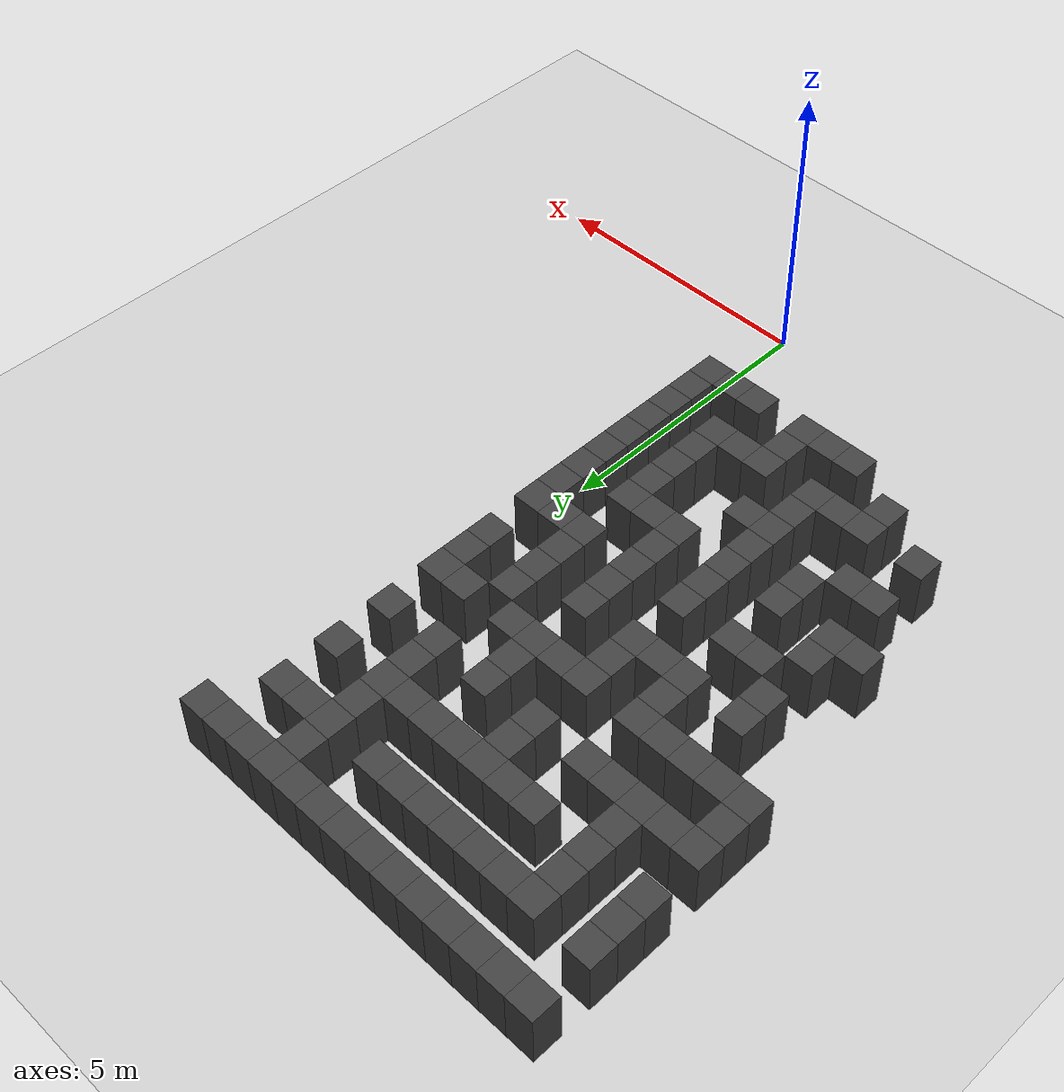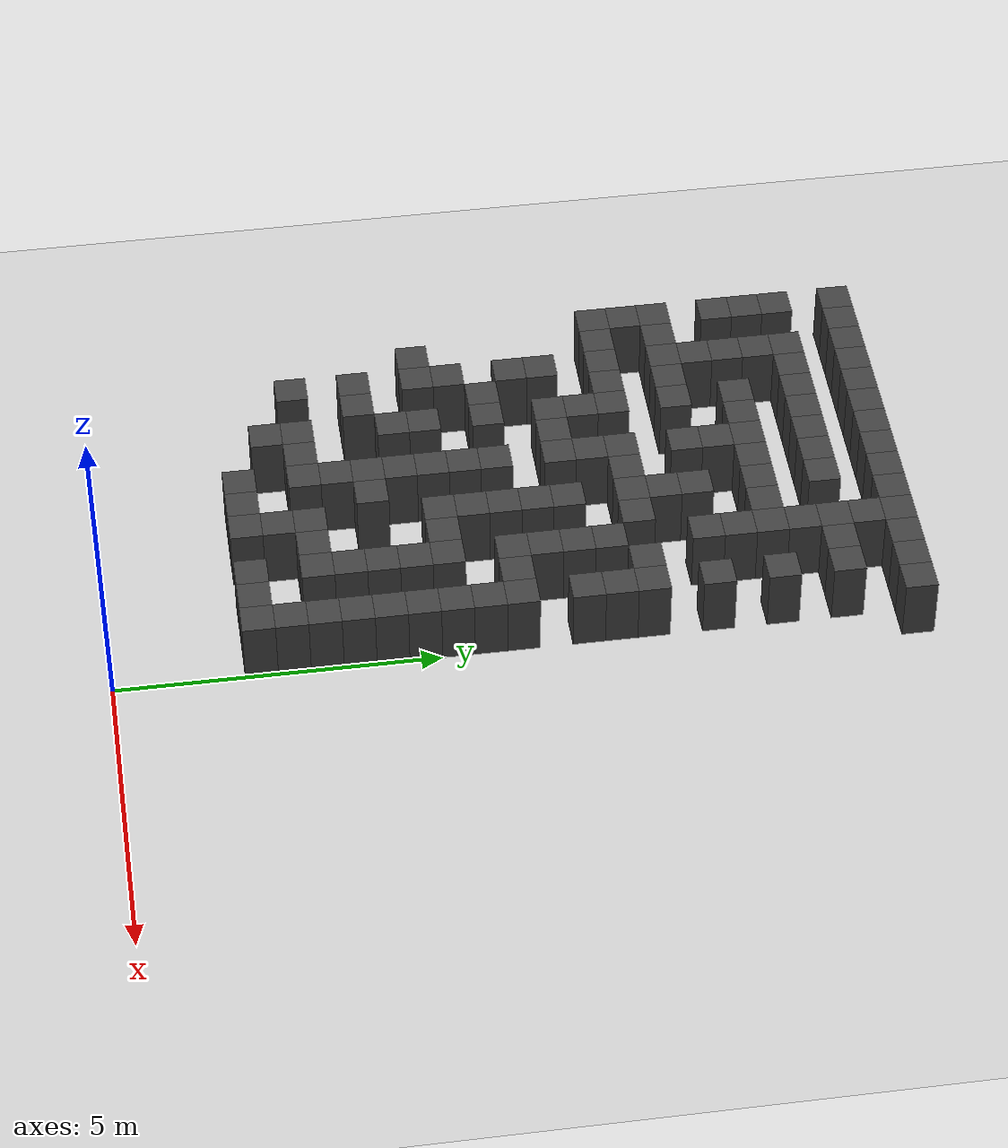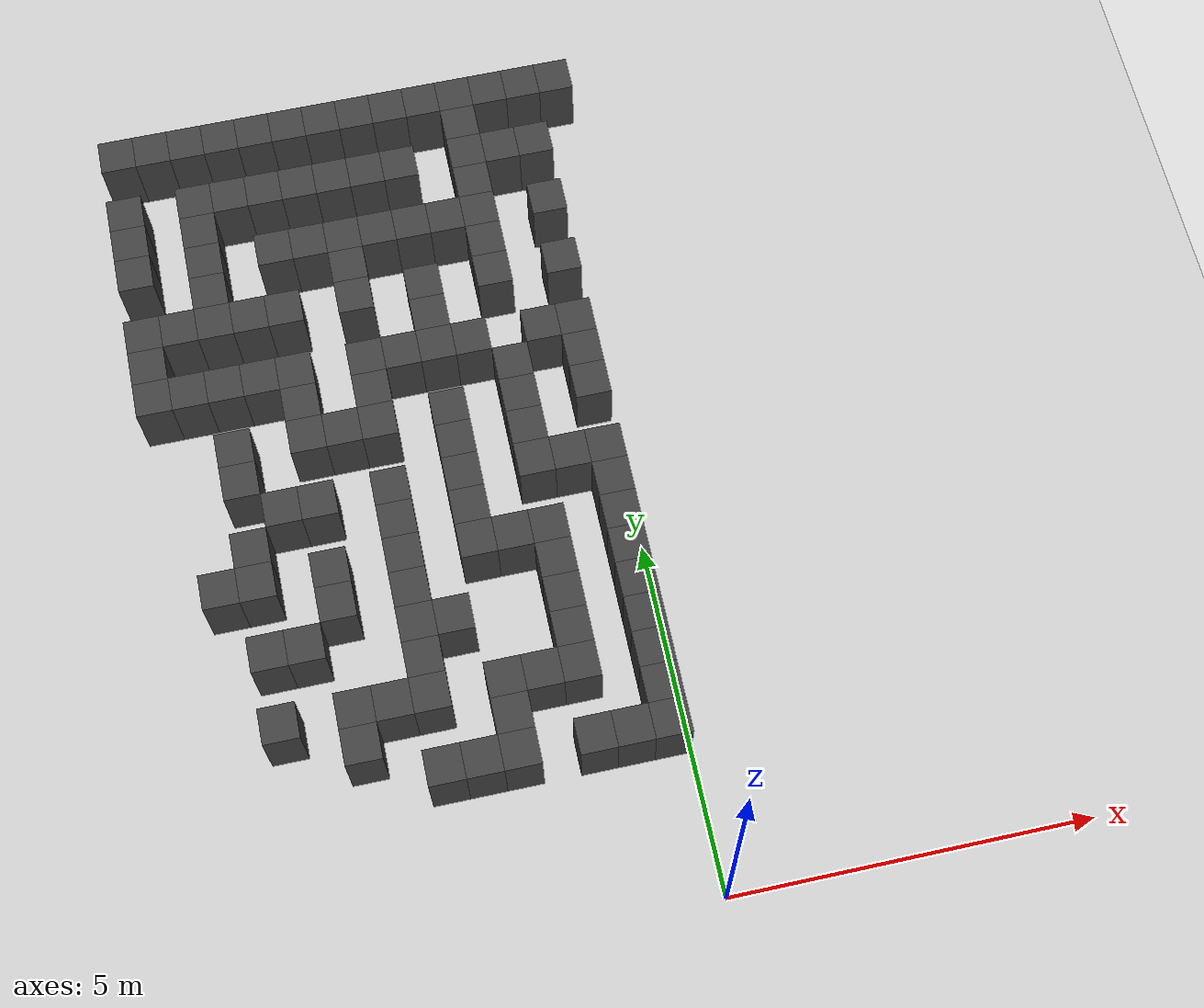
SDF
<sdf version="1.7">
 <world name="map_17508">
  <model name="ground_plane">
   <static>true</static>
   <link name="link">
    <collision name="collision">
     <geometry><plane><normal>0 0 1</normal><size>200 200</size></plane></geometry>
    </collision>
    <visual name="visual">
     <geometry><plane><normal>0 0 1</normal><size>200 200</size></plane></geometry>
     <material><ambient>0.8 0.8 0.8 1</ambient><diffuse>0.8 0.8 0.8 1</diffuse></material>
    </visual>
   </link>
  </model>
  <model name="maze_environment">
   <static>true</static>
   <link name="wall_12">
    <pose>-6.250 12.250 0.500 0 0 0</pose>
    <collision name="col"><geometry><box><size>0.5 0.5 1.0</size></box></geometry></collision>
    <visual name="vis">
     <geometry><box><size>0.5 0.5 1.0</size></box></geometry>
     <material><ambient>0.15 0.15 0.15 1</ambient><diffuse>0.25 0.25 0.25 1</diffuse></material>
    </visual>
   </link>
   <link name="wall_13">
    <pose>-5.750 12.250 0.500 0 0 0</pose>
    <collision name="col"><geometry><box><size>0.5 0.5 1.0</size></box></geometry></collision>
    <visual name="vis">
     <geometry><box><size>0.5 0.5 1.0</size></box></geometry>
     <material><ambient>0.15 0.15 0.15 1</ambient><diffuse>0.25 0.25 0.25 1</diffuse></material>
    </visual>
   </link>
   <link name="wall_14">
    <pose>-5.250 12.250 0.500 0 0 0</pose>
    <collision name="col"><geometry><box><size>0.5 0.5 1.0</size></box></geometry></collision>
    <visual name="vis">
     <geometry><box><size>0.5 0.5 1.0</size></box></geometry>
     <material><ambient>0.15 0.15 0.15 1</ambient><diffuse>0.25 0.25 0.25 1</diffuse></material>
    </visual>
   </link>
   <link name="wall_15">
    <pose>-4.750 12.250 0.500 0 0 0</pose>
    <collision name="col"><geometry><box><size>0.5 0.5 1.0</size></box></geometry></collision>
    <visual name="vis">
     <geometry><box><size>0.5 0.5 1.0</size></box></geometry>
     <material><ambient>0.15 0.15 0.15 1</ambient><diffuse>0.25 0.25 0.25 1</diffuse></material>
    </visual>
   </link>
   <link name="wall_16">
    <pose>-4.250 12.250 0.500 0 0 0</pose>
    <collision name="col"><geometry><box><size>0.5 0.5 1.0</size></box></geometry></collision>
    <visual name="vis">
     <geometry><box><size>0.5 0.5 1.0</size></box></geometry>
     <material><ambient>0.15 0.15 0.15 1</ambient><diffuse>0.25 0.25 0.25 1</diffuse></material>
    </visual>
   </link>
   <link name="wall_17">
    <pose>-3.750 12.250 0.500 0 0 0</pose>
    <collision name="col"><geometry><box><size>0.5 0.5 1.0</size></box></geometry></collision>
    <visual name="vis">
     <geometry><box><size>0.5 0.5 1.0</size></box></geometry>
     <material><ambient>0.15 0.15 0.15 1</ambient><diffuse>0.25 0.25 0.25 1</diffuse></material>
    </visual>
   </link>
   <link name="wall_18">
    <pose>-3.250 12.250 0.500 0 0 0</pose>
    <collision name="col"><geometry><box><size>0.5 0.5 1.0</size></box></geometry></collision>
    <visual name="vis">
     <geometry><box><size>0.5 0.5 1.0</size></box></geometry>
     <material><ambient>0.15 0.15 0.15 1</ambient><diffuse>0.25 0.25 0.25 1</diffuse></material>
    </visual>
   </link>
   <link name="wall_19">
    <pose>-2.750 12.250 0.500 0 0 0</pose>
    <collision name="col"><geometry><box><size>0.5 0.5 1.0</size></box></geometry></collision>
    <visual name="vis">
     <geometry><box><size>0.5 0.5 1.0</size></box></geometry>
     <material><ambient>0.15 0.15 0.15 1</ambient><diffuse>0.25 0.25 0.25 1</diffuse></material>
    </visual>
   </link>
   <link name="wall_20">
    <pose>-2.250 12.250 0.500 0 0 0</pose>
    <collision name="col"><geometry><box><size>0.5 0.5 1.0</size></box></geometry></collision>
    <visual name="vis">
     <geometry><box><size>0.5 0.5 1.0</size></box></geometry>
     <material><ambient>0.15 0.15 0.15 1</ambient><diffuse>0.25 0.25 0.25 1</diffuse></material>
    </visual>
   </link>
   <link name="wall_21">
    <pose>-1.750 12.250 0.500 0 0 0</pose>
    <collision name="col"><geometry><box><size>0.5 0.5 1.0</size></box></geometry></collision>
    <visual name="vis">
     <geometry><box><size>0.5 0.5 1.0</size></box></geometry>
     <material><ambient>0.15 0.15 0.15 1</ambient><diffuse>0.25 0.25 0.25 1</diffuse></material>
    </visual>
   </link>
   <link name="wall_22">
    <pose>-1.250 12.250 0.500 0 0 0</pose>
    <collision name="col"><geometry><box><size>0.5 0.5 1.0</size></box></geometry></collision>
    <visual name="vis">
     <geometry><box><size>0.5 0.5 1.0</size></box></geometry>
     <material><ambient>0.15 0.15 0.15 1</ambient><diffuse>0.25 0.25 0.25 1</diffuse></material>
    </visual>
   </link>
   <link name="wall_23">
    <pose>-0.750 12.250 0.500 0 0 0</pose>
    <collision name="col"><geometry><box><size>0.5 0.5 1.0</size></box></geometry></collision>
    <visual name="vis">
     <geometry><box><size>0.5 0.5 1.0</size></box></geometry>
     <material><ambient>0.15 0.15 0.15 1</ambient><diffuse>0.25 0.25 0.25 1</diffuse></material>
    </visual>
   </link>
   <link name="wall_24">
    <pose>-0.250 12.250 0.500 0 0 0</pose>
    <collision name="col"><geometry><box><size>0.5 0.5 1.0</size></box></geometry></collision>
    <visual name="vis">
     <geometry><box><size>0.5 0.5 1.0</size></box></geometry>
     <material><ambient>0.15 0.15 0.15 1</ambient><diffuse>0.25 0.25 0.25 1</diffuse></material>
    </visual>
   </link>
   <link name="wall_25">
    <pose>0.250 12.250 0.500 0 0 0</pose>
    <collision name="col"><geometry><box><size>0.5 0.5 1.0</size></box></geometry></collision>
    <visual name="vis">
     <geometry><box><size>0.5 0.5 1.0</size></box></geometry>
     <material><ambient>0.15 0.15 0.15 1</ambient><diffuse>0.25 0.25 0.25 1</diffuse></material>
    </visual>
   </link>
   <link name="wall_53">
    <pose>-1.250 11.750 0.500 0 0 0</pose>
    <collision name="col"><geometry><box><size>0.5 0.5 1.0</size></box></geometry></collision>
    <visual name="vis">
     <geometry><box><size>0.5 0.5 1.0</size></box></geometry>
     <material><ambient>0.15 0.15 0.15 1</ambient><diffuse>0.25 0.25 0.25 1</diffuse></material>
    </visual>
   </link>
   <link name="wall_65">
    <pose>-6.250 11.250 0.500 0 0 0</pose>
    <collision name="col"><geometry><box><size>0.5 0.5 1.0</size></box></geometry></collision>
    <visual name="vis">
     <geometry><box><size>0.5 0.5 1.0</size></box></geometry>
     <material><ambient>0.15 0.15 0.15 1</ambient><diffuse>0.25 0.25 0.25 1</diffuse></material>
    </visual>
   </link>
   <link name="wall_66">
    <pose>-5.250 11.250 0.500 0 0 0</pose>
    <collision name="col"><geometry><box><size>0.5 0.5 1.0</size></box></geometry></collision>
    <visual name="vis">
     <geometry><box><size>0.5 0.5 1.0</size></box></geometry>
     <material><ambient>0.15 0.15 0.15 1</ambient><diffuse>0.25 0.25 0.25 1</diffuse></material>
    </visual>
   </link>
   <link name="wall_67">
    <pose>-4.750 11.250 0.500 0 0 0</pose>
    <collision name="col"><geometry><box><size>0.5 0.5 1.0</size></box></geometry></collision>
    <visual name="vis">
     <geometry><box><size>0.5 0.5 1.0</size></box></geometry>
     <material><ambient>0.15 0.15 0.15 1</ambient><diffuse>0.25 0.25 0.25 1</diffuse></material>
    </visual>
   </link>
   <link name="wall_68">
    <pose>-4.250 11.250 0.500 0 0 0</pose>
    <collision name="col"><geometry><box><size>0.5 0.5 1.0</size></box></geometry></collision>
    <visual name="vis">
     <geometry><box><size>0.5 0.5 1.0</size></box></geometry>
     <material><ambient>0.15 0.15 0.15 1</ambient><diffuse>0.25 0.25 0.25 1</diffuse></material>
    </visual>
   </link>
   <link name="wall_69">
    <pose>-3.750 11.250 0.500 0 0 0</pose>
    <collision name="col"><geometry><box><size>0.5 0.5 1.0</size></box></geometry></collision>
    <visual name="vis">
     <geometry><box><size>0.5 0.5 1.0</size></box></geometry>
     <material><ambient>0.15 0.15 0.15 1</ambient><diffuse>0.25 0.25 0.25 1</diffuse></material>
    </visual>
   </link>
   <link name="wall_70">
    <pose>-3.250 11.250 0.500 0 0 0</pose>
    <collision name="col"><geometry><box><size>0.5 0.5 1.0</size></box></geometry></collision>
    <visual name="vis">
     <geometry><box><size>0.5 0.5 1.0</size></box></geometry>
     <material><ambient>0.15 0.15 0.15 1</ambient><diffuse>0.25 0.25 0.25 1</diffuse></material>
    </visual>
   </link>
   <link name="wall_71">
    <pose>-2.750 11.250 0.500 0 0 0</pose>
    <collision name="col"><geometry><box><size>0.5 0.5 1.0</size></box></geometry></collision>
    <visual name="vis">
     <geometry><box><size>0.5 0.5 1.0</size></box></geometry>
     <material><ambient>0.15 0.15 0.15 1</ambient><diffuse>0.25 0.25 0.25 1</diffuse></material>
    </visual>
   </link>
   <link name="wall_72">
    <pose>-2.250 11.250 0.500 0 0 0</pose>
    <collision name="col"><geometry><box><size>0.5 0.5 1.0</size></box></geometry></collision>
    <visual name="vis">
     <geometry><box><size>0.5 0.5 1.0</size></box></geometry>
     <material><ambient>0.15 0.15 0.15 1</ambient><diffuse>0.25 0.25 0.25 1</diffuse></material>
    </visual>
   </link>
   <link name="wall_73">
    <pose>-1.250 11.250 0.500 0 0 0</pose>
    <collision name="col"><geometry><box><size>0.5 0.5 1.0</size></box></geometry></collision>
    <visual name="vis">
     <geometry><box><size>0.5 0.5 1.0</size></box></geometry>
     <material><ambient>0.15 0.15 0.15 1</ambient><diffuse>0.25 0.25 0.25 1</diffuse></material>
    </visual>
   </link>
   <link name="wall_74">
    <pose>-0.750 11.250 0.500 0 0 0</pose>
    <collision name="col"><geometry><box><size>0.5 0.5 1.0</size></box></geometry></collision>
    <visual name="vis">
     <geometry><box><size>0.5 0.5 1.0</size></box></geometry>
     <material><ambient>0.15 0.15 0.15 1</ambient><diffuse>0.25 0.25 0.25 1</diffuse></material>
    </visual>
   </link>
   <link name="wall_75">
    <pose>-0.250 11.250 0.500 0 0 0</pose>
    <collision name="col"><geometry><box><size>0.5 0.5 1.0</size></box></geometry></collision>
    <visual name="vis">
     <geometry><box><size>0.5 0.5 1.0</size></box></geometry>
     <material><ambient>0.15 0.15 0.15 1</ambient><diffuse>0.25 0.25 0.25 1</diffuse></material>
    </visual>
   </link>
   <link name="wall_97">
    <pose>-6.250 10.750 0.500 0 0 0</pose>
    <collision name="col"><geometry><box><size>0.5 0.5 1.0</size></box></geometry></collision>
    <visual name="vis">
     <geometry><box><size>0.5 0.5 1.0</size></box></geometry>
     <material><ambient>0.15 0.15 0.15 1</ambient><diffuse>0.25 0.25 0.25 1</diffuse></material>
    </visual>
   </link>
   <link name="wall_98">
    <pose>-5.250 10.750 0.500 0 0 0</pose>
    <collision name="col"><geometry><box><size>0.5 0.5 1.0</size></box></geometry></collision>
    <visual name="vis">
     <geometry><box><size>0.5 0.5 1.0</size></box></geometry>
     <material><ambient>0.15 0.15 0.15 1</ambient><diffuse>0.25 0.25 0.25 1</diffuse></material>
    </visual>
   </link>
   <link name="wall_99">
    <pose>-1.250 10.750 0.500 0 0 0</pose>
    <collision name="col"><geometry><box><size>0.5 0.5 1.0</size></box></geometry></collision>
    <visual name="vis">
     <geometry><box><size>0.5 0.5 1.0</size></box></geometry>
     <material><ambient>0.15 0.15 0.15 1</ambient><diffuse>0.25 0.25 0.25 1</diffuse></material>
    </visual>
   </link>
   <link name="wall_115">
    <pose>-6.250 10.250 0.500 0 0 0</pose>
    <collision name="col"><geometry><box><size>0.5 0.5 1.0</size></box></geometry></collision>
    <visual name="vis">
     <geometry><box><size>0.5 0.5 1.0</size></box></geometry>
     <material><ambient>0.15 0.15 0.15 1</ambient><diffuse>0.25 0.25 0.25 1</diffuse></material>
    </visual>
   </link>
   <link name="wall_116">
    <pose>-5.250 10.250 0.500 0 0 0</pose>
    <collision name="col"><geometry><box><size>0.5 0.5 1.0</size></box></geometry></collision>
    <visual name="vis">
     <geometry><box><size>0.5 0.5 1.0</size></box></geometry>
     <material><ambient>0.15 0.15 0.15 1</ambient><diffuse>0.25 0.25 0.25 1</diffuse></material>
    </visual>
   </link>
   <link name="wall_117">
    <pose>-4.250 10.250 0.500 0 0 0</pose>
    <collision name="col"><geometry><box><size>0.5 0.5 1.0</size></box></geometry></collision>
    <visual name="vis">
     <geometry><box><size>0.5 0.5 1.0</size></box></geometry>
     <material><ambient>0.15 0.15 0.15 1</ambient><diffuse>0.25 0.25 0.25 1</diffuse></material>
    </visual>
   </link>
   <link name="wall_118">
    <pose>-3.750 10.250 0.500 0 0 0</pose>
    <collision name="col"><geometry><box><size>0.5 0.5 1.0</size></box></geometry></collision>
    <visual name="vis">
     <geometry><box><size>0.5 0.5 1.0</size></box></geometry>
     <material><ambient>0.15 0.15 0.15 1</ambient><diffuse>0.25 0.25 0.25 1</diffuse></material>
    </visual>
   </link>
   <link name="wall_119">
    <pose>-3.250 10.250 0.500 0 0 0</pose>
    <collision name="col"><geometry><box><size>0.5 0.5 1.0</size></box></geometry></collision>
    <visual name="vis">
     <geometry><box><size>0.5 0.5 1.0</size></box></geometry>
     <material><ambient>0.15 0.15 0.15 1</ambient><diffuse>0.25 0.25 0.25 1</diffuse></material>
    </visual>
   </link>
   <link name="wall_120">
    <pose>-2.750 10.250 0.500 0 0 0</pose>
    <collision name="col"><geometry><box><size>0.5 0.5 1.0</size></box></geometry></collision>
    <visual name="vis">
     <geometry><box><size>0.5 0.5 1.0</size></box></geometry>
     <material><ambient>0.15 0.15 0.15 1</ambient><diffuse>0.25 0.25 0.25 1</diffuse></material>
    </visual>
   </link>
   <link name="wall_121">
    <pose>-2.250 10.250 0.500 0 0 0</pose>
    <collision name="col"><geometry><box><size>0.5 0.5 1.0</size></box></geometry></collision>
    <visual name="vis">
     <geometry><box><size>0.5 0.5 1.0</size></box></geometry>
     <material><ambient>0.15 0.15 0.15 1</ambient><diffuse>0.25 0.25 0.25 1</diffuse></material>
    </visual>
   </link>
   <link name="wall_122">
    <pose>-1.750 10.250 0.500 0 0 0</pose>
    <collision name="col"><geometry><box><size>0.5 0.5 1.0</size></box></geometry></collision>
    <visual name="vis">
     <geometry><box><size>0.5 0.5 1.0</size></box></geometry>
     <material><ambient>0.15 0.15 0.15 1</ambient><diffuse>0.25 0.25 0.25 1</diffuse></material>
    </visual>
   </link>
   <link name="wall_123">
    <pose>-1.250 10.250 0.500 0 0 0</pose>
    <collision name="col"><geometry><box><size>0.5 0.5 1.0</size></box></geometry></collision>
    <visual name="vis">
     <geometry><box><size>0.5 0.5 1.0</size></box></geometry>
     <material><ambient>0.15 0.15 0.15 1</ambient><diffuse>0.25 0.25 0.25 1</diffuse></material>
    </visual>
   </link>
   <link name="wall_124">
    <pose>-0.250 10.250 0.500 0 0 0</pose>
    <collision name="col"><geometry><box><size>0.5 0.5 1.0</size></box></geometry></collision>
    <visual name="vis">
     <geometry><box><size>0.5 0.5 1.0</size></box></geometry>
     <material><ambient>0.15 0.15 0.15 1</ambient><diffuse>0.25 0.25 0.25 1</diffuse></material>
    </visual>
   </link>
   <link name="wall_149">
    <pose>-5.250 9.750 0.500 0 0 0</pose>
    <collision name="col"><geometry><box><size>0.5 0.5 1.0</size></box></geometry></collision>
    <visual name="vis">
     <geometry><box><size>0.5 0.5 1.0</size></box></geometry>
     <material><ambient>0.15 0.15 0.15 1</ambient><diffuse>0.25 0.25 0.25 1</diffuse></material>
    </visual>
   </link>
   <link name="wall_150">
    <pose>-3.250 9.750 0.500 0 0 0</pose>
    <collision name="col"><geometry><box><size>0.5 0.5 1.0</size></box></geometry></collision>
    <visual name="vis">
     <geometry><box><size>0.5 0.5 1.0</size></box></geometry>
     <material><ambient>0.15 0.15 0.15 1</ambient><diffuse>0.25 0.25 0.25 1</diffuse></material>
    </visual>
   </link>
   <link name="wall_151">
    <pose>-1.250 9.750 0.500 0 0 0</pose>
    <collision name="col"><geometry><box><size>0.5 0.5 1.0</size></box></geometry></collision>
    <visual name="vis">
     <geometry><box><size>0.5 0.5 1.0</size></box></geometry>
     <material><ambient>0.15 0.15 0.15 1</ambient><diffuse>0.25 0.25 0.25 1</diffuse></material>
    </visual>
   </link>
   <link name="wall_168">
    <pose>-6.250 9.250 0.500 0 0 0</pose>
    <collision name="col"><geometry><box><size>0.5 0.5 1.0</size></box></geometry></collision>
    <visual name="vis">
     <geometry><box><size>0.5 0.5 1.0</size></box></geometry>
     <material><ambient>0.15 0.15 0.15 1</ambient><diffuse>0.25 0.25 0.25 1</diffuse></material>
    </visual>
   </link>
   <link name="wall_169">
    <pose>-5.750 9.250 0.500 0 0 0</pose>
    <collision name="col"><geometry><box><size>0.5 0.5 1.0</size></box></geometry></collision>
    <visual name="vis">
     <geometry><box><size>0.5 0.5 1.0</size></box></geometry>
     <material><ambient>0.15 0.15 0.15 1</ambient><diffuse>0.25 0.25 0.25 1</diffuse></material>
    </visual>
   </link>
   <link name="wall_170">
    <pose>-5.250 9.250 0.500 0 0 0</pose>
    <collision name="col"><geometry><box><size>0.5 0.5 1.0</size></box></geometry></collision>
    <visual name="vis">
     <geometry><box><size>0.5 0.5 1.0</size></box></geometry>
     <material><ambient>0.15 0.15 0.15 1</ambient><diffuse>0.25 0.25 0.25 1</diffuse></material>
    </visual>
   </link>
   <link name="wall_171">
    <pose>-4.750 9.250 0.500 0 0 0</pose>
    <collision name="col"><geometry><box><size>0.5 0.5 1.0</size></box></geometry></collision>
    <visual name="vis">
     <geometry><box><size>0.5 0.5 1.0</size></box></geometry>
     <material><ambient>0.15 0.15 0.15 1</ambient><diffuse>0.25 0.25 0.25 1</diffuse></material>
    </visual>
   </link>
   <link name="wall_172">
    <pose>-4.250 9.250 0.500 0 0 0</pose>
    <collision name="col"><geometry><box><size>0.5 0.5 1.0</size></box></geometry></collision>
    <visual name="vis">
     <geometry><box><size>0.5 0.5 1.0</size></box></geometry>
     <material><ambient>0.15 0.15 0.15 1</ambient><diffuse>0.25 0.25 0.25 1</diffuse></material>
    </visual>
   </link>
   <link name="wall_173">
    <pose>-3.250 9.250 0.500 0 0 0</pose>
    <collision name="col"><geometry><box><size>0.5 0.5 1.0</size></box></geometry></collision>
    <visual name="vis">
     <geometry><box><size>0.5 0.5 1.0</size></box></geometry>
     <material><ambient>0.15 0.15 0.15 1</ambient><diffuse>0.25 0.25 0.25 1</diffuse></material>
    </visual>
   </link>
   <link name="wall_174">
    <pose>-2.250 9.250 0.500 0 0 0</pose>
    <collision name="col"><geometry><box><size>0.5 0.5 1.0</size></box></geometry></collision>
    <visual name="vis">
     <geometry><box><size>0.5 0.5 1.0</size></box></geometry>
     <material><ambient>0.15 0.15 0.15 1</ambient><diffuse>0.25 0.25 0.25 1</diffuse></material>
    </visual>
   </link>
   <link name="wall_175">
    <pose>-1.250 9.250 0.500 0 0 0</pose>
    <collision name="col"><geometry><box><size>0.5 0.5 1.0</size></box></geometry></collision>
    <visual name="vis">
     <geometry><box><size>0.5 0.5 1.0</size></box></geometry>
     <material><ambient>0.15 0.15 0.15 1</ambient><diffuse>0.25 0.25 0.25 1</diffuse></material>
    </visual>
   </link>
   <link name="wall_176">
    <pose>-0.250 9.250 0.500 0 0 0</pose>
    <collision name="col"><geometry><box><size>0.5 0.5 1.0</size></box></geometry></collision>
    <visual name="vis">
     <geometry><box><size>0.5 0.5 1.0</size></box></geometry>
     <material><ambient>0.15 0.15 0.15 1</ambient><diffuse>0.25 0.25 0.25 1</diffuse></material>
    </visual>
   </link>
   <link name="wall_194">
    <pose>-6.250 8.750 0.500 0 0 0</pose>
    <collision name="col"><geometry><box><size>0.5 0.5 1.0</size></box></geometry></collision>
    <visual name="vis">
     <geometry><box><size>0.5 0.5 1.0</size></box></geometry>
     <material><ambient>0.15 0.15 0.15 1</ambient><diffuse>0.25 0.25 0.25 1</diffuse></material>
    </visual>
   </link>
   <link name="wall_195">
    <pose>-2.250 8.750 0.500 0 0 0</pose>
    <collision name="col"><geometry><box><size>0.5 0.5 1.0</size></box></geometry></collision>
    <visual name="vis">
     <geometry><box><size>0.5 0.5 1.0</size></box></geometry>
     <material><ambient>0.15 0.15 0.15 1</ambient><diffuse>0.25 0.25 0.25 1</diffuse></material>
    </visual>
   </link>
   <link name="wall_214">
    <pose>-6.250 8.250 0.500 0 0 0</pose>
    <collision name="col"><geometry><box><size>0.5 0.5 1.0</size></box></geometry></collision>
    <visual name="vis">
     <geometry><box><size>0.5 0.5 1.0</size></box></geometry>
     <material><ambient>0.15 0.15 0.15 1</ambient><diffuse>0.25 0.25 0.25 1</diffuse></material>
    </visual>
   </link>
   <link name="wall_215">
    <pose>-5.750 8.250 0.500 0 0 0</pose>
    <collision name="col"><geometry><box><size>0.5 0.5 1.0</size></box></geometry></collision>
    <visual name="vis">
     <geometry><box><size>0.5 0.5 1.0</size></box></geometry>
     <material><ambient>0.15 0.15 0.15 1</ambient><diffuse>0.25 0.25 0.25 1</diffuse></material>
    </visual>
   </link>
   <link name="wall_216">
    <pose>-5.250 8.250 0.500 0 0 0</pose>
    <collision name="col"><geometry><box><size>0.5 0.5 1.0</size></box></geometry></collision>
    <visual name="vis">
     <geometry><box><size>0.5 0.5 1.0</size></box></geometry>
     <material><ambient>0.15 0.15 0.15 1</ambient><diffuse>0.25 0.25 0.25 1</diffuse></material>
    </visual>
   </link>
   <link name="wall_217">
    <pose>-4.750 8.250 0.500 0 0 0</pose>
    <collision name="col"><geometry><box><size>0.5 0.5 1.0</size></box></geometry></collision>
    <visual name="vis">
     <geometry><box><size>0.5 0.5 1.0</size></box></geometry>
     <material><ambient>0.15 0.15 0.15 1</ambient><diffuse>0.25 0.25 0.25 1</diffuse></material>
    </visual>
   </link>
   <link name="wall_218">
    <pose>-4.250 8.250 0.500 0 0 0</pose>
    <collision name="col"><geometry><box><size>0.5 0.5 1.0</size></box></geometry></collision>
    <visual name="vis">
     <geometry><box><size>0.5 0.5 1.0</size></box></geometry>
     <material><ambient>0.15 0.15 0.15 1</ambient><diffuse>0.25 0.25 0.25 1</diffuse></material>
    </visual>
   </link>
   <link name="wall_219">
    <pose>-3.250 8.250 0.500 0 0 0</pose>
    <collision name="col"><geometry><box><size>0.5 0.5 1.0</size></box></geometry></collision>
    <visual name="vis">
     <geometry><box><size>0.5 0.5 1.0</size></box></geometry>
     <material><ambient>0.15 0.15 0.15 1</ambient><diffuse>0.25 0.25 0.25 1</diffuse></material>
    </visual>
   </link>
   <link name="wall_220">
    <pose>-2.750 8.250 0.500 0 0 0</pose>
    <collision name="col"><geometry><box><size>0.5 0.5 1.0</size></box></geometry></collision>
    <visual name="vis">
     <geometry><box><size>0.5 0.5 1.0</size></box></geometry>
     <material><ambient>0.15 0.15 0.15 1</ambient><diffuse>0.25 0.25 0.25 1</diffuse></material>
    </visual>
   </link>
   <link name="wall_221">
    <pose>-2.250 8.250 0.500 0 0 0</pose>
    <collision name="col"><geometry><box><size>0.5 0.5 1.0</size></box></geometry></collision>
    <visual name="vis">
     <geometry><box><size>0.5 0.5 1.0</size></box></geometry>
     <material><ambient>0.15 0.15 0.15 1</ambient><diffuse>0.25 0.25 0.25 1</diffuse></material>
    </visual>
   </link>
   <link name="wall_222">
    <pose>-1.750 8.250 0.500 0 0 0</pose>
    <collision name="col"><geometry><box><size>0.5 0.5 1.0</size></box></geometry></collision>
    <visual name="vis">
     <geometry><box><size>0.5 0.5 1.0</size></box></geometry>
     <material><ambient>0.15 0.15 0.15 1</ambient><diffuse>0.25 0.25 0.25 1</diffuse></material>
    </visual>
   </link>
   <link name="wall_223">
    <pose>-0.750 8.250 0.500 0 0 0</pose>
    <collision name="col"><geometry><box><size>0.5 0.5 1.0</size></box></geometry></collision>
    <visual name="vis">
     <geometry><box><size>0.5 0.5 1.0</size></box></geometry>
     <material><ambient>0.15 0.15 0.15 1</ambient><diffuse>0.25 0.25 0.25 1</diffuse></material>
    </visual>
   </link>
   <link name="wall_224">
    <pose>-0.250 8.250 0.500 0 0 0</pose>
    <collision name="col"><geometry><box><size>0.5 0.5 1.0</size></box></geometry></collision>
    <visual name="vis">
     <geometry><box><size>0.5 0.5 1.0</size></box></geometry>
     <material><ambient>0.15 0.15 0.15 1</ambient><diffuse>0.25 0.25 0.25 1</diffuse></material>
    </visual>
   </link>
   <link name="wall_246">
    <pose>-4.250 7.750 0.500 0 0 0</pose>
    <collision name="col"><geometry><box><size>0.5 0.5 1.0</size></box></geometry></collision>
    <visual name="vis">
     <geometry><box><size>0.5 0.5 1.0</size></box></geometry>
     <material><ambient>0.15 0.15 0.15 1</ambient><diffuse>0.25 0.25 0.25 1</diffuse></material>
    </visual>
   </link>
   <link name="wall_247">
    <pose>-3.250 7.750 0.500 0 0 0</pose>
    <collision name="col"><geometry><box><size>0.5 0.5 1.0</size></box></geometry></collision>
    <visual name="vis">
     <geometry><box><size>0.5 0.5 1.0</size></box></geometry>
     <material><ambient>0.15 0.15 0.15 1</ambient><diffuse>0.25 0.25 0.25 1</diffuse></material>
    </visual>
   </link>
   <link name="wall_248">
    <pose>-1.250 7.750 0.500 0 0 0</pose>
    <collision name="col"><geometry><box><size>0.5 0.5 1.0</size></box></geometry></collision>
    <visual name="vis">
     <geometry><box><size>0.5 0.5 1.0</size></box></geometry>
     <material><ambient>0.15 0.15 0.15 1</ambient><diffuse>0.25 0.25 0.25 1</diffuse></material>
    </visual>
   </link>
   <link name="wall_249">
    <pose>-0.250 7.750 0.500 0 0 0</pose>
    <collision name="col"><geometry><box><size>0.5 0.5 1.0</size></box></geometry></collision>
    <visual name="vis">
     <geometry><box><size>0.5 0.5 1.0</size></box></geometry>
     <material><ambient>0.15 0.15 0.15 1</ambient><diffuse>0.25 0.25 0.25 1</diffuse></material>
    </visual>
   </link>
   <link name="wall_264">
    <pose>-5.250 7.250 0.500 0 0 0</pose>
    <collision name="col"><geometry><box><size>0.5 0.5 1.0</size></box></geometry></collision>
    <visual name="vis">
     <geometry><box><size>0.5 0.5 1.0</size></box></geometry>
     <material><ambient>0.15 0.15 0.15 1</ambient><diffuse>0.25 0.25 0.25 1</diffuse></material>
    </visual>
   </link>
   <link name="wall_265">
    <pose>-4.250 7.250 0.500 0 0 0</pose>
    <collision name="col"><geometry><box><size>0.5 0.5 1.0</size></box></geometry></collision>
    <visual name="vis">
     <geometry><box><size>0.5 0.5 1.0</size></box></geometry>
     <material><ambient>0.15 0.15 0.15 1</ambient><diffuse>0.25 0.25 0.25 1</diffuse></material>
    </visual>
   </link>
   <link name="wall_266">
    <pose>-3.750 7.250 0.500 0 0 0</pose>
    <collision name="col"><geometry><box><size>0.5 0.5 1.0</size></box></geometry></collision>
    <visual name="vis">
     <geometry><box><size>0.5 0.5 1.0</size></box></geometry>
     <material><ambient>0.15 0.15 0.15 1</ambient><diffuse>0.25 0.25 0.25 1</diffuse></material>
    </visual>
   </link>
   <link name="wall_267">
    <pose>-3.250 7.250 0.500 0 0 0</pose>
    <collision name="col"><geometry><box><size>0.5 0.5 1.0</size></box></geometry></collision>
    <visual name="vis">
     <geometry><box><size>0.5 0.5 1.0</size></box></geometry>
     <material><ambient>0.15 0.15 0.15 1</ambient><diffuse>0.25 0.25 0.25 1</diffuse></material>
    </visual>
   </link>
   <link name="wall_268">
    <pose>-2.250 7.250 0.500 0 0 0</pose>
    <collision name="col"><geometry><box><size>0.5 0.5 1.0</size></box></geometry></collision>
    <visual name="vis">
     <geometry><box><size>0.5 0.5 1.0</size></box></geometry>
     <material><ambient>0.15 0.15 0.15 1</ambient><diffuse>0.25 0.25 0.25 1</diffuse></material>
    </visual>
   </link>
   <link name="wall_269">
    <pose>-1.250 7.250 0.500 0 0 0</pose>
    <collision name="col"><geometry><box><size>0.5 0.5 1.0</size></box></geometry></collision>
    <visual name="vis">
     <geometry><box><size>0.5 0.5 1.0</size></box></geometry>
     <material><ambient>0.15 0.15 0.15 1</ambient><diffuse>0.25 0.25 0.25 1</diffuse></material>
    </visual>
   </link>
   <link name="wall_270">
    <pose>-0.250 7.250 0.500 0 0 0</pose>
    <collision name="col"><geometry><box><size>0.5 0.5 1.0</size></box></geometry></collision>
    <visual name="vis">
     <geometry><box><size>0.5 0.5 1.0</size></box></geometry>
     <material><ambient>0.15 0.15 0.15 1</ambient><diffuse>0.25 0.25 0.25 1</diffuse></material>
    </visual>
   </link>
   <link name="wall_293">
    <pose>-5.250 6.750 0.500 0 0 0</pose>
    <collision name="col"><geometry><box><size>0.5 0.5 1.0</size></box></geometry></collision>
    <visual name="vis">
     <geometry><box><size>0.5 0.5 1.0</size></box></geometry>
     <material><ambient>0.15 0.15 0.15 1</ambient><diffuse>0.25 0.25 0.25 1</diffuse></material>
    </visual>
   </link>
   <link name="wall_294">
    <pose>-2.250 6.750 0.500 0 0 0</pose>
    <collision name="col"><geometry><box><size>0.5 0.5 1.0</size></box></geometry></collision>
    <visual name="vis">
     <geometry><box><size>0.5 0.5 1.0</size></box></geometry>
     <material><ambient>0.15 0.15 0.15 1</ambient><diffuse>0.25 0.25 0.25 1</diffuse></material>
    </visual>
   </link>
   <link name="wall_295">
    <pose>-1.250 6.750 0.500 0 0 0</pose>
    <collision name="col"><geometry><box><size>0.5 0.5 1.0</size></box></geometry></collision>
    <visual name="vis">
     <geometry><box><size>0.5 0.5 1.0</size></box></geometry>
     <material><ambient>0.15 0.15 0.15 1</ambient><diffuse>0.25 0.25 0.25 1</diffuse></material>
    </visual>
   </link>
   <link name="wall_313">
    <pose>-4.750 6.250 0.500 0 0 0</pose>
    <collision name="col"><geometry><box><size>0.5 0.5 1.0</size></box></geometry></collision>
    <visual name="vis">
     <geometry><box><size>0.5 0.5 1.0</size></box></geometry>
     <material><ambient>0.15 0.15 0.15 1</ambient><diffuse>0.25 0.25 0.25 1</diffuse></material>
    </visual>
   </link>
   <link name="wall_314">
    <pose>-4.250 6.250 0.500 0 0 0</pose>
    <collision name="col"><geometry><box><size>0.5 0.5 1.0</size></box></geometry></collision>
    <visual name="vis">
     <geometry><box><size>0.5 0.5 1.0</size></box></geometry>
     <material><ambient>0.15 0.15 0.15 1</ambient><diffuse>0.25 0.25 0.25 1</diffuse></material>
    </visual>
   </link>
   <link name="wall_315">
    <pose>-3.250 6.250 0.500 0 0 0</pose>
    <collision name="col"><geometry><box><size>0.5 0.5 1.0</size></box></geometry></collision>
    <visual name="vis">
     <geometry><box><size>0.5 0.5 1.0</size></box></geometry>
     <material><ambient>0.15 0.15 0.15 1</ambient><diffuse>0.25 0.25 0.25 1</diffuse></material>
    </visual>
   </link>
   <link name="wall_316">
    <pose>-2.250 6.250 0.500 0 0 0</pose>
    <collision name="col"><geometry><box><size>0.5 0.5 1.0</size></box></geometry></collision>
    <visual name="vis">
     <geometry><box><size>0.5 0.5 1.0</size></box></geometry>
     <material><ambient>0.15 0.15 0.15 1</ambient><diffuse>0.25 0.25 0.25 1</diffuse></material>
    </visual>
   </link>
   <link name="wall_317">
    <pose>-1.250 6.250 0.500 0 0 0</pose>
    <collision name="col"><geometry><box><size>0.5 0.5 1.0</size></box></geometry></collision>
    <visual name="vis">
     <geometry><box><size>0.5 0.5 1.0</size></box></geometry>
     <material><ambient>0.15 0.15 0.15 1</ambient><diffuse>0.25 0.25 0.25 1</diffuse></material>
    </visual>
   </link>
   <link name="wall_318">
    <pose>-0.750 6.250 0.500 0 0 0</pose>
    <collision name="col"><geometry><box><size>0.5 0.5 1.0</size></box></geometry></collision>
    <visual name="vis">
     <geometry><box><size>0.5 0.5 1.0</size></box></geometry>
     <material><ambient>0.15 0.15 0.15 1</ambient><diffuse>0.25 0.25 0.25 1</diffuse></material>
    </visual>
   </link>
   <link name="wall_319">
    <pose>-0.250 6.250 0.500 0 0 0</pose>
    <collision name="col"><geometry><box><size>0.5 0.5 1.0</size></box></geometry></collision>
    <visual name="vis">
     <geometry><box><size>0.5 0.5 1.0</size></box></geometry>
     <material><ambient>0.15 0.15 0.15 1</ambient><diffuse>0.25 0.25 0.25 1</diffuse></material>
    </visual>
   </link>
   <link name="wall_341">
    <pose>-5.250 5.750 0.500 0 0 0</pose>
    <collision name="col"><geometry><box><size>0.5 0.5 1.0</size></box></geometry></collision>
    <visual name="vis">
     <geometry><box><size>0.5 0.5 1.0</size></box></geometry>
     <material><ambient>0.15 0.15 0.15 1</ambient><diffuse>0.25 0.25 0.25 1</diffuse></material>
    </visual>
   </link>
   <link name="wall_342">
    <pose>-3.250 5.750 0.500 0 0 0</pose>
    <collision name="col"><geometry><box><size>0.5 0.5 1.0</size></box></geometry></collision>
    <visual name="vis">
     <geometry><box><size>0.5 0.5 1.0</size></box></geometry>
     <material><ambient>0.15 0.15 0.15 1</ambient><diffuse>0.25 0.25 0.25 1</diffuse></material>
    </visual>
   </link>
   <link name="wall_343">
    <pose>-2.250 5.750 0.500 0 0 0</pose>
    <collision name="col"><geometry><box><size>0.5 0.5 1.0</size></box></geometry></collision>
    <visual name="vis">
     <geometry><box><size>0.5 0.5 1.0</size></box></geometry>
     <material><ambient>0.15 0.15 0.15 1</ambient><diffuse>0.25 0.25 0.25 1</diffuse></material>
    </visual>
   </link>
   <link name="wall_344">
    <pose>-0.250 5.750 0.500 0 0 0</pose>
    <collision name="col"><geometry><box><size>0.5 0.5 1.0</size></box></geometry></collision>
    <visual name="vis">
     <geometry><box><size>0.5 0.5 1.0</size></box></geometry>
     <material><ambient>0.15 0.15 0.15 1</ambient><diffuse>0.25 0.25 0.25 1</diffuse></material>
    </visual>
   </link>
   <link name="wall_359">
    <pose>-5.750 5.250 0.500 0 0 0</pose>
    <collision name="col"><geometry><box><size>0.5 0.5 1.0</size></box></geometry></collision>
    <visual name="vis">
     <geometry><box><size>0.5 0.5 1.0</size></box></geometry>
     <material><ambient>0.15 0.15 0.15 1</ambient><diffuse>0.25 0.25 0.25 1</diffuse></material>
    </visual>
   </link>
   <link name="wall_360">
    <pose>-5.250 5.250 0.500 0 0 0</pose>
    <collision name="col"><geometry><box><size>0.5 0.5 1.0</size></box></geometry></collision>
    <visual name="vis">
     <geometry><box><size>0.5 0.5 1.0</size></box></geometry>
     <material><ambient>0.15 0.15 0.15 1</ambient><diffuse>0.25 0.25 0.25 1</diffuse></material>
    </visual>
   </link>
   <link name="wall_361">
    <pose>-4.250 5.250 0.500 0 0 0</pose>
    <collision name="col"><geometry><box><size>0.5 0.5 1.0</size></box></geometry></collision>
    <visual name="vis">
     <geometry><box><size>0.5 0.5 1.0</size></box></geometry>
     <material><ambient>0.15 0.15 0.15 1</ambient><diffuse>0.25 0.25 0.25 1</diffuse></material>
    </visual>
   </link>
   <link name="wall_362">
    <pose>-3.250 5.250 0.500 0 0 0</pose>
    <collision name="col"><geometry><box><size>0.5 0.5 1.0</size></box></geometry></collision>
    <visual name="vis">
     <geometry><box><size>0.5 0.5 1.0</size></box></geometry>
     <material><ambient>0.15 0.15 0.15 1</ambient><diffuse>0.25 0.25 0.25 1</diffuse></material>
    </visual>
   </link>
   <link name="wall_363">
    <pose>-2.250 5.250 0.500 0 0 0</pose>
    <collision name="col"><geometry><box><size>0.5 0.5 1.0</size></box></geometry></collision>
    <visual name="vis">
     <geometry><box><size>0.5 0.5 1.0</size></box></geometry>
     <material><ambient>0.15 0.15 0.15 1</ambient><diffuse>0.25 0.25 0.25 1</diffuse></material>
    </visual>
   </link>
   <link name="wall_364">
    <pose>-1.750 5.250 0.500 0 0 0</pose>
    <collision name="col"><geometry><box><size>0.5 0.5 1.0</size></box></geometry></collision>
    <visual name="vis">
     <geometry><box><size>0.5 0.5 1.0</size></box></geometry>
     <material><ambient>0.15 0.15 0.15 1</ambient><diffuse>0.25 0.25 0.25 1</diffuse></material>
    </visual>
   </link>
   <link name="wall_365">
    <pose>-1.250 5.250 0.500 0 0 0</pose>
    <collision name="col"><geometry><box><size>0.5 0.5 1.0</size></box></geometry></collision>
    <visual name="vis">
     <geometry><box><size>0.5 0.5 1.0</size></box></geometry>
     <material><ambient>0.15 0.15 0.15 1</ambient><diffuse>0.25 0.25 0.25 1</diffuse></material>
    </visual>
   </link>
   <link name="wall_366">
    <pose>-0.250 5.250 0.500 0 0 0</pose>
    <collision name="col"><geometry><box><size>0.5 0.5 1.0</size></box></geometry></collision>
    <visual name="vis">
     <geometry><box><size>0.5 0.5 1.0</size></box></geometry>
     <material><ambient>0.15 0.15 0.15 1</ambient><diffuse>0.25 0.25 0.25 1</diffuse></material>
    </visual>
   </link>
   <link name="wall_388">
    <pose>-4.250 4.750 0.500 0 0 0</pose>
    <collision name="col"><geometry><box><size>0.5 0.5 1.0</size></box></geometry></collision>
    <visual name="vis">
     <geometry><box><size>0.5 0.5 1.0</size></box></geometry>
     <material><ambient>0.15 0.15 0.15 1</ambient><diffuse>0.25 0.25 0.25 1</diffuse></material>
    </visual>
   </link>
   <link name="wall_389">
    <pose>-3.250 4.750 0.500 0 0 0</pose>
    <collision name="col"><geometry><box><size>0.5 0.5 1.0</size></box></geometry></collision>
    <visual name="vis">
     <geometry><box><size>0.5 0.5 1.0</size></box></geometry>
     <material><ambient>0.15 0.15 0.15 1</ambient><diffuse>0.25 0.25 0.25 1</diffuse></material>
    </visual>
   </link>
   <link name="wall_390">
    <pose>-1.250 4.750 0.500 0 0 0</pose>
    <collision name="col"><geometry><box><size>0.5 0.5 1.0</size></box></geometry></collision>
    <visual name="vis">
     <geometry><box><size>0.5 0.5 1.0</size></box></geometry>
     <material><ambient>0.15 0.15 0.15 1</ambient><diffuse>0.25 0.25 0.25 1</diffuse></material>
    </visual>
   </link>
   <link name="wall_391">
    <pose>-0.250 4.750 0.500 0 0 0</pose>
    <collision name="col"><geometry><box><size>0.5 0.5 1.0</size></box></geometry></collision>
    <visual name="vis">
     <geometry><box><size>0.5 0.5 1.0</size></box></geometry>
     <material><ambient>0.15 0.15 0.15 1</ambient><diffuse>0.25 0.25 0.25 1</diffuse></material>
    </visual>
   </link>
   <link name="wall_408">
    <pose>-5.250 4.250 0.500 0 0 0</pose>
    <collision name="col"><geometry><box><size>0.5 0.5 1.0</size></box></geometry></collision>
    <visual name="vis">
     <geometry><box><size>0.5 0.5 1.0</size></box></geometry>
     <material><ambient>0.15 0.15 0.15 1</ambient><diffuse>0.25 0.25 0.25 1</diffuse></material>
    </visual>
   </link>
   <link name="wall_409">
    <pose>-4.750 4.250 0.500 0 0 0</pose>
    <collision name="col"><geometry><box><size>0.5 0.5 1.0</size></box></geometry></collision>
    <visual name="vis">
     <geometry><box><size>0.5 0.5 1.0</size></box></geometry>
     <material><ambient>0.15 0.15 0.15 1</ambient><diffuse>0.25 0.25 0.25 1</diffuse></material>
    </visual>
   </link>
   <link name="wall_410">
    <pose>-3.250 4.250 0.500 0 0 0</pose>
    <collision name="col"><geometry><box><size>0.5 0.5 1.0</size></box></geometry></collision>
    <visual name="vis">
     <geometry><box><size>0.5 0.5 1.0</size></box></geometry>
     <material><ambient>0.15 0.15 0.15 1</ambient><diffuse>0.25 0.25 0.25 1</diffuse></material>
    </visual>
   </link>
   <link name="wall_411">
    <pose>-2.750 4.250 0.500 0 0 0</pose>
    <collision name="col"><geometry><box><size>0.5 0.5 1.0</size></box></geometry></collision>
    <visual name="vis">
     <geometry><box><size>0.5 0.5 1.0</size></box></geometry>
     <material><ambient>0.15 0.15 0.15 1</ambient><diffuse>0.25 0.25 0.25 1</diffuse></material>
    </visual>
   </link>
   <link name="wall_412">
    <pose>-1.250 4.250 0.500 0 0 0</pose>
    <collision name="col"><geometry><box><size>0.5 0.5 1.0</size></box></geometry></collision>
    <visual name="vis">
     <geometry><box><size>0.5 0.5 1.0</size></box></geometry>
     <material><ambient>0.15 0.15 0.15 1</ambient><diffuse>0.25 0.25 0.25 1</diffuse></material>
    </visual>
   </link>
   <link name="wall_413">
    <pose>-0.250 4.250 0.500 0 0 0</pose>
    <collision name="col"><geometry><box><size>0.5 0.5 1.0</size></box></geometry></collision>
    <visual name="vis">
     <geometry><box><size>0.5 0.5 1.0</size></box></geometry>
     <material><ambient>0.15 0.15 0.15 1</ambient><diffuse>0.25 0.25 0.25 1</diffuse></material>
    </visual>
   </link>
   <link name="wall_434">
    <pose>-3.250 3.750 0.500 0 0 0</pose>
    <collision name="col"><geometry><box><size>0.5 0.5 1.0</size></box></geometry></collision>
    <visual name="vis">
     <geometry><box><size>0.5 0.5 1.0</size></box></geometry>
     <material><ambient>0.15 0.15 0.15 1</ambient><diffuse>0.25 0.25 0.25 1</diffuse></material>
    </visual>
   </link>
   <link name="wall_435">
    <pose>-1.250 3.750 0.500 0 0 0</pose>
    <collision name="col"><geometry><box><size>0.5 0.5 1.0</size></box></geometry></collision>
    <visual name="vis">
     <geometry><box><size>0.5 0.5 1.0</size></box></geometry>
     <material><ambient>0.15 0.15 0.15 1</ambient><diffuse>0.25 0.25 0.25 1</diffuse></material>
    </visual>
   </link>
   <link name="wall_436">
    <pose>-0.250 3.750 0.500 0 0 0</pose>
    <collision name="col"><geometry><box><size>0.5 0.5 1.0</size></box></geometry></collision>
    <visual name="vis">
     <geometry><box><size>0.5 0.5 1.0</size></box></geometry>
     <material><ambient>0.15 0.15 0.15 1</ambient><diffuse>0.25 0.25 0.25 1</diffuse></material>
    </visual>
   </link>
   <link name="wall_454">
    <pose>-5.250 3.250 0.500 0 0 0</pose>
    <collision name="col"><geometry><box><size>0.5 0.5 1.0</size></box></geometry></collision>
    <visual name="vis">
     <geometry><box><size>0.5 0.5 1.0</size></box></geometry>
     <material><ambient>0.15 0.15 0.15 1</ambient><diffuse>0.25 0.25 0.25 1</diffuse></material>
    </visual>
   </link>
   <link name="wall_455">
    <pose>-4.250 3.250 0.500 0 0 0</pose>
    <collision name="col"><geometry><box><size>0.5 0.5 1.0</size></box></geometry></collision>
    <visual name="vis">
     <geometry><box><size>0.5 0.5 1.0</size></box></geometry>
     <material><ambient>0.15 0.15 0.15 1</ambient><diffuse>0.25 0.25 0.25 1</diffuse></material>
    </visual>
   </link>
   <link name="wall_456">
    <pose>-3.750 3.250 0.500 0 0 0</pose>
    <collision name="col"><geometry><box><size>0.5 0.5 1.0</size></box></geometry></collision>
    <visual name="vis">
     <geometry><box><size>0.5 0.5 1.0</size></box></geometry>
     <material><ambient>0.15 0.15 0.15 1</ambient><diffuse>0.25 0.25 0.25 1</diffuse></material>
    </visual>
   </link>
   <link name="wall_457">
    <pose>-3.250 3.250 0.500 0 0 0</pose>
    <collision name="col"><geometry><box><size>0.5 0.5 1.0</size></box></geometry></collision>
    <visual name="vis">
     <geometry><box><size>0.5 0.5 1.0</size></box></geometry>
     <material><ambient>0.15 0.15 0.15 1</ambient><diffuse>0.25 0.25 0.25 1</diffuse></material>
    </visual>
   </link>
   <link name="wall_458">
    <pose>-2.250 3.250 0.500 0 0 0</pose>
    <collision name="col"><geometry><box><size>0.5 0.5 1.0</size></box></geometry></collision>
    <visual name="vis">
     <geometry><box><size>0.5 0.5 1.0</size></box></geometry>
     <material><ambient>0.15 0.15 0.15 1</ambient><diffuse>0.25 0.25 0.25 1</diffuse></material>
    </visual>
   </link>
   <link name="wall_459">
    <pose>-1.750 3.250 0.500 0 0 0</pose>
    <collision name="col"><geometry><box><size>0.5 0.5 1.0</size></box></geometry></collision>
    <visual name="vis">
     <geometry><box><size>0.5 0.5 1.0</size></box></geometry>
     <material><ambient>0.15 0.15 0.15 1</ambient><diffuse>0.25 0.25 0.25 1</diffuse></material>
    </visual>
   </link>
   <link name="wall_460">
    <pose>-1.250 3.250 0.500 0 0 0</pose>
    <collision name="col"><geometry><box><size>0.5 0.5 1.0</size></box></geometry></collision>
    <visual name="vis">
     <geometry><box><size>0.5 0.5 1.0</size></box></geometry>
     <material><ambient>0.15 0.15 0.15 1</ambient><diffuse>0.25 0.25 0.25 1</diffuse></material>
    </visual>
   </link>
   <link name="wall_461">
    <pose>-0.250 3.250 0.500 0 0 0</pose>
    <collision name="col"><geometry><box><size>0.5 0.5 1.0</size></box></geometry></collision>
    <visual name="vis">
     <geometry><box><size>0.5 0.5 1.0</size></box></geometry>
     <material><ambient>0.15 0.15 0.15 1</ambient><diffuse>0.25 0.25 0.25 1</diffuse></material>
    </visual>
   </link>
   <link name="wall_482">
    <pose>-4.250 2.750 0.500 0 0 0</pose>
    <collision name="col"><geometry><box><size>0.5 0.5 1.0</size></box></geometry></collision>
    <visual name="vis">
     <geometry><box><size>0.5 0.5 1.0</size></box></geometry>
     <material><ambient>0.15 0.15 0.15 1</ambient><diffuse>0.25 0.25 0.25 1</diffuse></material>
    </visual>
   </link>
   <link name="wall_483">
    <pose>-2.250 2.750 0.500 0 0 0</pose>
    <collision name="col"><geometry><box><size>0.5 0.5 1.0</size></box></geometry></collision>
    <visual name="vis">
     <geometry><box><size>0.5 0.5 1.0</size></box></geometry>
     <material><ambient>0.15 0.15 0.15 1</ambient><diffuse>0.25 0.25 0.25 1</diffuse></material>
    </visual>
   </link>
   <link name="wall_484">
    <pose>-0.250 2.750 0.500 0 0 0</pose>
    <collision name="col"><geometry><box><size>0.5 0.5 1.0</size></box></geometry></collision>
    <visual name="vis">
     <geometry><box><size>0.5 0.5 1.0</size></box></geometry>
     <material><ambient>0.15 0.15 0.15 1</ambient><diffuse>0.25 0.25 0.25 1</diffuse></material>
    </visual>
   </link>
   <link name="wall_504">
    <pose>-3.250 2.250 0.500 0 0 0</pose>
    <collision name="col"><geometry><box><size>0.5 0.5 1.0</size></box></geometry></collision>
    <visual name="vis">
     <geometry><box><size>0.5 0.5 1.0</size></box></geometry>
     <material><ambient>0.15 0.15 0.15 1</ambient><diffuse>0.25 0.25 0.25 1</diffuse></material>
    </visual>
   </link>
   <link name="wall_505">
    <pose>-2.750 2.250 0.500 0 0 0</pose>
    <collision name="col"><geometry><box><size>0.5 0.5 1.0</size></box></geometry></collision>
    <visual name="vis">
     <geometry><box><size>0.5 0.5 1.0</size></box></geometry>
     <material><ambient>0.15 0.15 0.15 1</ambient><diffuse>0.25 0.25 0.25 1</diffuse></material>
    </visual>
   </link>
   <link name="wall_506">
    <pose>-2.250 2.250 0.500 0 0 0</pose>
    <collision name="col"><geometry><box><size>0.5 0.5 1.0</size></box></geometry></collision>
    <visual name="vis">
     <geometry><box><size>0.5 0.5 1.0</size></box></geometry>
     <material><ambient>0.15 0.15 0.15 1</ambient><diffuse>0.25 0.25 0.25 1</diffuse></material>
    </visual>
   </link>
   <link name="wall_507">
    <pose>-1.250 2.250 0.500 0 0 0</pose>
    <collision name="col"><geometry><box><size>0.5 0.5 1.0</size></box></geometry></collision>
    <visual name="vis">
     <geometry><box><size>0.5 0.5 1.0</size></box></geometry>
     <material><ambient>0.15 0.15 0.15 1</ambient><diffuse>0.25 0.25 0.25 1</diffuse></material>
    </visual>
   </link>
   <link name="wall_508">
    <pose>-0.750 2.250 0.500 0 0 0</pose>
    <collision name="col"><geometry><box><size>0.5 0.5 1.0</size></box></geometry></collision>
    <visual name="vis">
     <geometry><box><size>0.5 0.5 1.0</size></box></geometry>
     <material><ambient>0.15 0.15 0.15 1</ambient><diffuse>0.25 0.25 0.25 1</diffuse></material>
    </visual>
   </link>
   <link name="wall_509">
    <pose>-0.250 2.250 0.500 0 0 0</pose>
    <collision name="col"><geometry><box><size>0.5 0.5 1.0</size></box></geometry></collision>
    <visual name="vis">
     <geometry><box><size>0.5 0.5 1.0</size></box></geometry>
     <material><ambient>0.15 0.15 0.15 1</ambient><diffuse>0.25 0.25 0.25 1</diffuse></material>
    </visual>
   </link>
  </model>
 </world>
</sdf>
